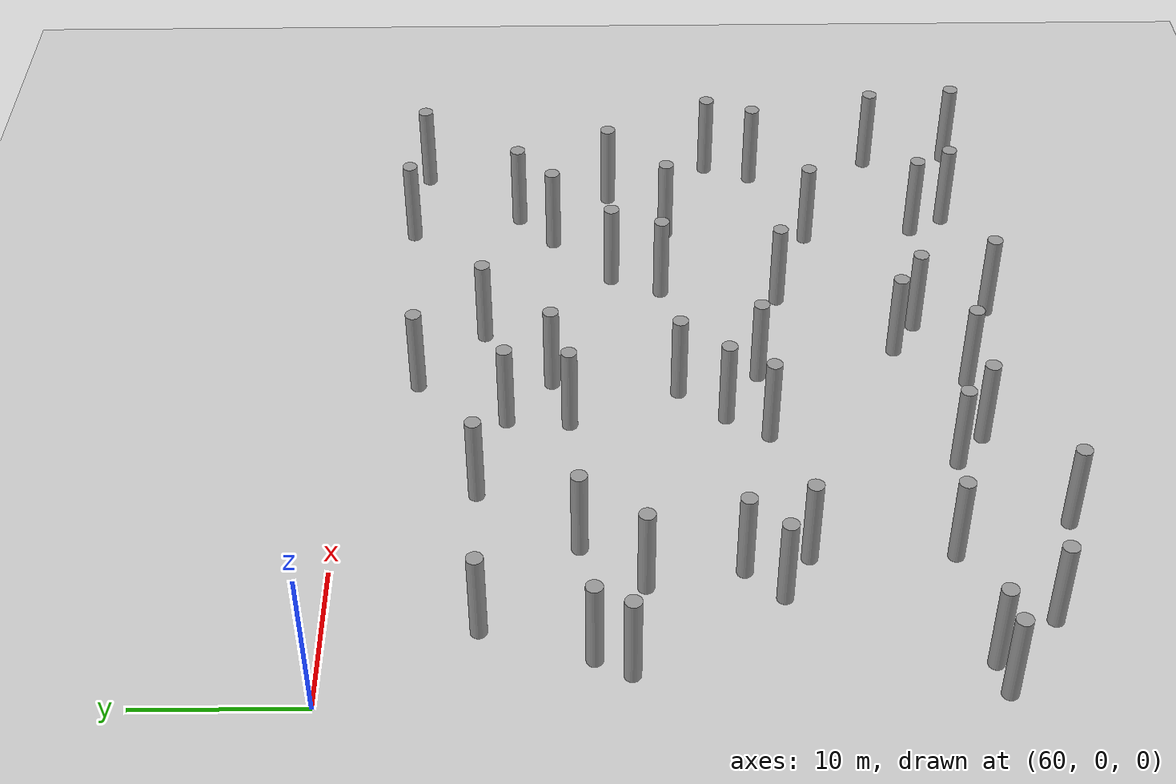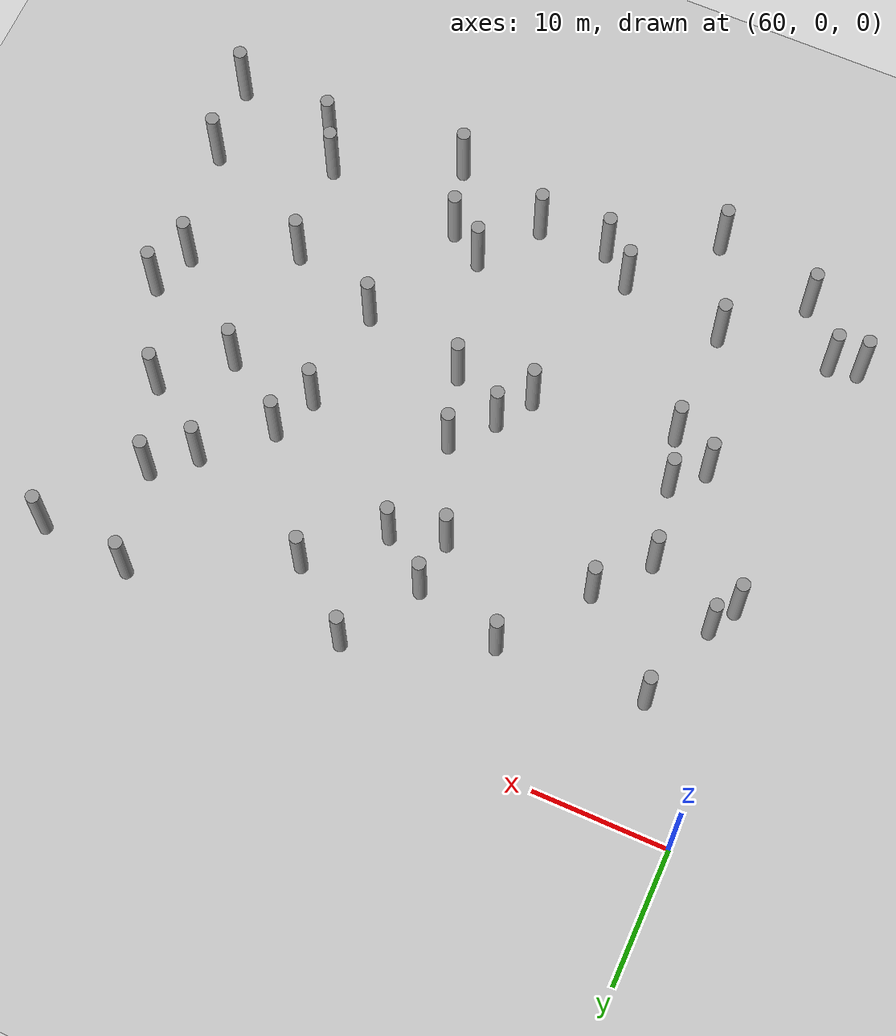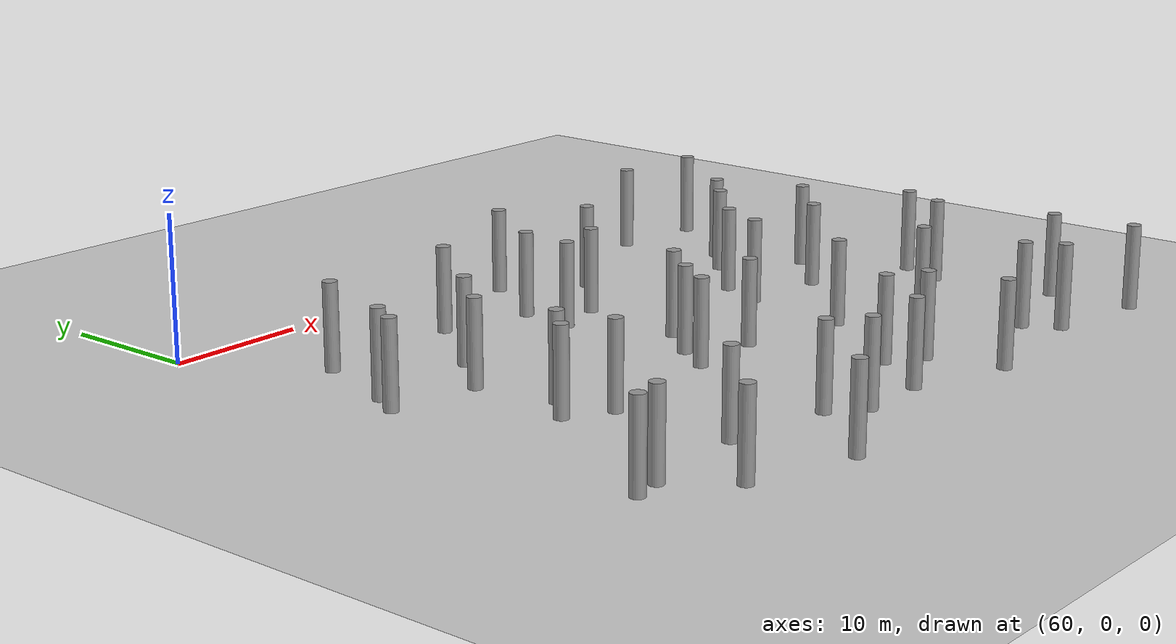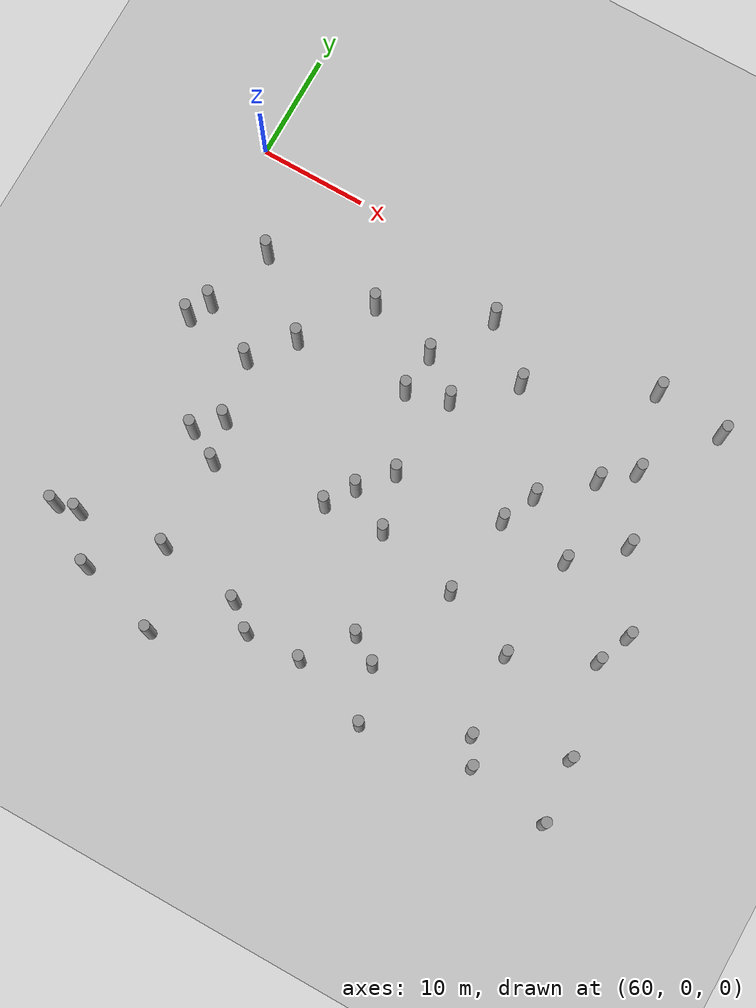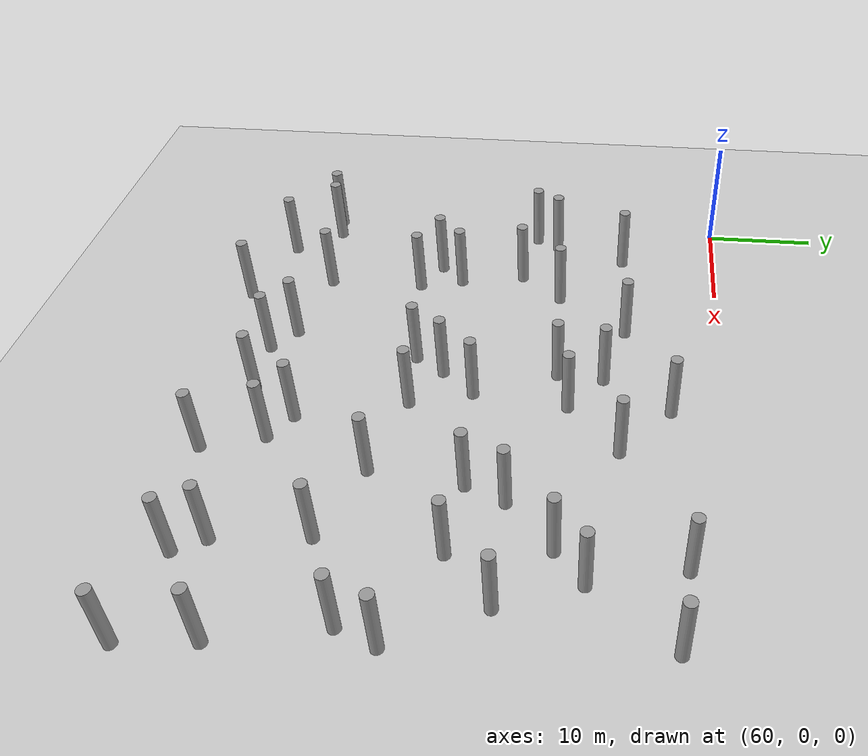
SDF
<sdf version="1.5">
 <world name="circle">
  <model name="ground">
   <static>1</static>
   <link name="link">
    <collision name="collision">
     <geometry><plane><normal>0 0 1</normal><size>100 100</size></plane></geometry>
     <surface><friction><ode><mu>100</mu><mu2>50</mu2></ode></friction></surface>
    </collision>
    <visual name="visual">
     <cast_shadows>0</cast_shadows>
     <geometry><plane><normal>0 0 1</normal><size>100 100</size></plane></geometry>
     <material>
      <script><uri>file://media/materials/scripts/gazebo.material</uri><name>Gazebo/Grey</name></script>
     </material>
    </visual>
    <velocity_decay><linear>0</linear><angular>0</angular></velocity_decay>
   </link>
  </model>
  <model name="unit_cylinder_85">
   <pose>60.5291782547 -37.8817674376 3 3e-06 4e-06 -0</pose>
   <static>1</static>
   <self_collide>1</self_collide>
   <link name="link">
    <inertial>
     <mass>1</mass>
     <inertia><ixx>0.145833</ixx><ixy>0</ixy><ixz>0</ixz><iyy>0.145833</iyy><iyz>0</iyz><izz>0.125</izz></inertia>
    </inertial>
    <collision name="collision">
     <geometry><cylinder><radius>0.5</radius><length>6</length></cylinder></geometry>
    </collision>
    <visual name="visual">
     <geometry><cylinder><radius>0.5</radius><length>6</length></cylinder></geometry>
     <material>
      <script><name>Gazebo/Grey</name><uri>file://media/materials/scripts/gazebo.material</uri></script>
     </material>
    </visual>
    <collision name="cyl_collision">
     <geometry><cylinder><radius>0.5</radius><length>6</length></cylinder></geometry>
    </collision>
    <sensor name="my_contact" type="contact">
     <contact><collision>cyl_collision</collision></contact>
     <update_rate>5</update_rate>
    </sensor>
   </link>
  </model>
  <model name="unit_cylinder_88">
   <pose>62.0941952787 -17.3783309904 3 3e-06 4e-06 -0</pose>
   <static>1</static>
   <self_collide>1</self_collide>
   <link name="link">
    <inertial>
     <mass>1</mass>
     <inertia><ixx>0.145833</ixx><ixy>0</ixy><ixz>0</ixz><iyy>0.145833</iyy><iyz>0</iyz><izz>0.125</izz></inertia>
    </inertial>
    <collision name="collision">
     <geometry><cylinder><radius>0.5</radius><length>6</length></cylinder></geometry>
    </collision>
    <visual name="visual">
     <geometry><cylinder><radius>0.5</radius><length>6</length></cylinder></geometry>
     <material>
      <script><name>Gazebo/Grey</name><uri>file://media/materials/scripts/gazebo.material</uri></script>
     </material>
    </visual>
    <collision name="cyl_collision">
     <geometry><cylinder><radius>0.5</radius><length>6</length></cylinder></geometry>
    </collision>
    <sensor name="my_contact" type="contact">
     <contact><collision>cyl_collision</collision></contact>
     <update_rate>5</update_rate>
    </sensor>
   </link>
  </model>
  <model name="unit_cylinder_96">
   <pose>65.7556817825 -41.3425212759 3 3e-06 4e-06 -0</pose>
   <static>1</static>
   <self_collide>1</self_collide>
   <link name="link">
    <inertial>
     <mass>1</mass>
     <inertia><ixx>0.145833</ixx><ixy>0</ixy><ixz>0</ixz><iyy>0.145833</iyy><iyz>0</iyz><izz>0.125</izz></inertia>
    </inertial>
    <collision name="collision">
     <geometry><cylinder><radius>0.5</radius><length>6</length></cylinder></geometry>
    </collision>
    <visual name="visual">
     <geometry><cylinder><radius>0.5</radius><length>6</length></cylinder></geometry>
     <material>
      <script><name>Gazebo/Grey</name><uri>file://media/materials/scripts/gazebo.material</uri></script>
     </material>
    </visual>
    <collision name="cyl_collision">
     <geometry><cylinder><radius>0.5</radius><length>6</length></cylinder></geometry>
    </collision>
    <sensor name="my_contact" type="contact">
     <contact><collision>cyl_collision</collision></contact>
     <update_rate>5</update_rate>
    </sensor>
   </link>
  </model>
  <model name="unit_cylinder_97">
   <pose>62.6766367463 -37.4803931034 3 3e-06 4e-06 -0</pose>
   <static>1</static>
   <self_collide>1</self_collide>
   <link name="link">
    <inertial>
     <mass>1</mass>
     <inertia><ixx>0.145833</ixx><ixy>0</ixy><ixz>0</ixz><iyy>0.145833</iyy><iyz>0</iyz><izz>0.125</izz></inertia>
    </inertial>
    <collision name="collision">
     <geometry><cylinder><radius>0.5</radius><length>6</length></cylinder></geometry>
    </collision>
    <visual name="visual">
     <geometry><cylinder><radius>0.5</radius><length>6</length></cylinder></geometry>
     <material>
      <script><name>Gazebo/Grey</name><uri>file://media/materials/scripts/gazebo.material</uri></script>
     </material>
    </visual>
    <collision name="cyl_collision">
     <geometry><cylinder><radius>0.5</radius><length>6</length></cylinder></geometry>
    </collision>
    <sensor name="my_contact" type="contact">
     <contact><collision>cyl_collision</collision></contact>
     <update_rate>5</update_rate>
    </sensor>
   </link>
  </model>
  <model name="unit_cylinder_98">
   <pose>67.6738407797 -26.2086623888 3 3e-06 4e-06 -0</pose>
   <static>1</static>
   <self_collide>1</self_collide>
   <link name="link">
    <inertial>
     <mass>1</mass>
     <inertia><ixx>0.145833</ixx><ixy>0</ixy><ixz>0</ixz><iyy>0.145833</iyy><iyz>0</iyz><izz>0.125</izz></inertia>
    </inertial>
    <collision name="collision">
     <geometry><cylinder><radius>0.5</radius><length>6</length></cylinder></geometry>
    </collision>
    <visual name="visual">
     <geometry><cylinder><radius>0.5</radius><length>6</length></cylinder></geometry>
     <material>
      <script><name>Gazebo/Grey</name><uri>file://media/materials/scripts/gazebo.material</uri></script>
     </material>
    </visual>
    <collision name="cyl_collision">
     <geometry><cylinder><radius>0.5</radius><length>6</length></cylinder></geometry>
    </collision>
    <sensor name="my_contact" type="contact">
     <contact><collision>cyl_collision</collision></contact>
     <update_rate>5</update_rate>
    </sensor>
   </link>
  </model>
  <model name="unit_cylinder_99">
   <pose>68.5849390489 -18.3017853732 3 3e-06 4e-06 -0</pose>
   <static>1</static>
   <self_collide>1</self_collide>
   <link name="link">
    <inertial>
     <mass>1</mass>
     <inertia><ixx>0.145833</ixx><ixy>0</ixy><ixz>0</ixz><iyy>0.145833</iyy><iyz>0</iyz><izz>0.125</izz></inertia>
    </inertial>
    <collision name="collision">
     <geometry><cylinder><radius>0.5</radius><length>6</length></cylinder></geometry>
    </collision>
    <visual name="visual">
     <geometry><cylinder><radius>0.5</radius><length>6</length></cylinder></geometry>
     <material>
      <script><name>Gazebo/Grey</name><uri>file://media/materials/scripts/gazebo.material</uri></script>
     </material>
    </visual>
    <collision name="cyl_collision">
     <geometry><cylinder><radius>0.5</radius><length>6</length></cylinder></geometry>
    </collision>
    <sensor name="my_contact" type="contact">
     <contact><collision>cyl_collision</collision></contact>
     <update_rate>5</update_rate>
    </sensor>
   </link>
  </model>
  <model name="unit_cylinder_100">
   <pose>63.1962397777 -15.3102940471 3 3e-06 4e-06 -0</pose>
   <static>1</static>
   <self_collide>1</self_collide>
   <link name="link">
    <inertial>
     <mass>1</mass>
     <inertia><ixx>0.145833</ixx><ixy>0</ixy><ixz>0</ixz><iyy>0.145833</iyy><iyz>0</iyz><izz>0.125</izz></inertia>
    </inertial>
    <collision name="collision">
     <geometry><cylinder><radius>0.5</radius><length>6</length></cylinder></geometry>
    </collision>
    <visual name="visual">
     <geometry><cylinder><radius>0.5</radius><length>6</length></cylinder></geometry>
     <material>
      <script><name>Gazebo/Grey</name><uri>file://media/materials/scripts/gazebo.material</uri></script>
     </material>
    </visual>
    <collision name="cyl_collision">
     <geometry><cylinder><radius>0.5</radius><length>6</length></cylinder></geometry>
    </collision>
    <sensor name="my_contact" type="contact">
     <contact><collision>cyl_collision</collision></contact>
     <update_rate>5</update_rate>
    </sensor>
   </link>
  </model>
  <model name="unit_cylinder_101">
   <pose>65.3477613188 -8.82656916744 3 3e-06 4e-06 -0</pose>
   <static>1</static>
   <self_collide>1</self_collide>
   <link name="link">
    <inertial>
     <mass>1</mass>
     <inertia><ixx>0.145833</ixx><ixy>0</ixy><ixz>0</ixz><iyy>0.145833</iyy><iyz>0</iyz><izz>0.125</izz></inertia>
    </inertial>
    <collision name="collision">
     <geometry><cylinder><radius>0.5</radius><length>6</length></cylinder></geometry>
    </collision>
    <visual name="visual">
     <geometry><cylinder><radius>0.5</radius><length>6</length></cylinder></geometry>
     <material>
      <script><name>Gazebo/Grey</name><uri>file://media/materials/scripts/gazebo.material</uri></script>
     </material>
    </visual>
    <collision name="cyl_collision">
     <geometry><cylinder><radius>0.5</radius><length>6</length></cylinder></geometry>
    </collision>
    <sensor name="my_contact" type="contact">
     <contact><collision>cyl_collision</collision></contact>
     <update_rate>5</update_rate>
    </sensor>
   </link>
  </model>
  <model name="unit_cylinder_108">
   <pose>73.4168012974 -43.5791878229 3 3e-06 4e-06 -0</pose>
   <static>1</static>
   <self_collide>1</self_collide>
   <link name="link">
    <inertial>
     <mass>1</mass>
     <inertia><ixx>0.145833</ixx><ixy>0</ixy><ixz>0</ixz><iyy>0.145833</iyy><iyz>0</iyz><izz>0.125</izz></inertia>
    </inertial>
    <collision name="collision">
     <geometry><cylinder><radius>0.5</radius><length>6</length></cylinder></geometry>
    </collision>
    <visual name="visual">
     <geometry><cylinder><radius>0.5</radius><length>6</length></cylinder></geometry>
     <material>
      <script><name>Gazebo/Grey</name><uri>file://media/materials/scripts/gazebo.material</uri></script>
     </material>
    </visual>
    <collision name="cyl_collision">
     <geometry><cylinder><radius>0.5</radius><length>6</length></cylinder></geometry>
    </collision>
    <sensor name="my_contact" type="contact">
     <contact><collision>cyl_collision</collision></contact>
     <update_rate>5</update_rate>
    </sensor>
   </link>
  </model>
  <model name="unit_cylinder_109">
   <pose>70.8381058164 -36.4555184195 3 3e-06 4e-06 -0</pose>
   <static>1</static>
   <self_collide>1</self_collide>
   <link name="link">
    <inertial>
     <mass>1</mass>
     <inertia><ixx>0.145833</ixx><ixy>0</ixy><ixz>0</ixz><iyy>0.145833</iyy><iyz>0</iyz><izz>0.125</izz></inertia>
    </inertial>
    <collision name="collision">
     <geometry><cylinder><radius>0.5</radius><length>6</length></cylinder></geometry>
    </collision>
    <visual name="visual">
     <geometry><cylinder><radius>0.5</radius><length>6</length></cylinder></geometry>
     <material>
      <script><name>Gazebo/Grey</name><uri>file://media/materials/scripts/gazebo.material</uri></script>
     </material>
    </visual>
    <collision name="cyl_collision">
     <geometry><cylinder><radius>0.5</radius><length>6</length></cylinder></geometry>
    </collision>
    <sensor name="my_contact" type="contact">
     <contact><collision>cyl_collision</collision></contact>
     <update_rate>5</update_rate>
    </sensor>
   </link>
  </model>
  <model name="unit_cylinder_110">
   <pose>70.7430462581 -27.8816749023 3 3e-06 4e-06 -0</pose>
   <static>1</static>
   <self_collide>1</self_collide>
   <link name="link">
    <inertial>
     <mass>1</mass>
     <inertia><ixx>0.145833</ixx><ixy>0</ixy><ixz>0</ixz><iyy>0.145833</iyy><iyz>0</iyz><izz>0.125</izz></inertia>
    </inertial>
    <collision name="collision">
     <geometry><cylinder><radius>0.5</radius><length>6</length></cylinder></geometry>
    </collision>
    <visual name="visual">
     <geometry><cylinder><radius>0.5</radius><length>6</length></cylinder></geometry>
     <material>
      <script><name>Gazebo/Grey</name><uri>file://media/materials/scripts/gazebo.material</uri></script>
     </material>
    </visual>
    <collision name="cyl_collision">
     <geometry><cylinder><radius>0.5</radius><length>6</length></cylinder></geometry>
    </collision>
    <sensor name="my_contact" type="contact">
     <contact><collision>cyl_collision</collision></contact>
     <update_rate>5</update_rate>
    </sensor>
   </link>
  </model>
  <model name="unit_cylinder_111">
   <pose>69.745508982 -24.0433433254 3 3e-06 4e-06 -0</pose>
   <static>1</static>
   <self_collide>1</self_collide>
   <link name="link">
    <inertial>
     <mass>1</mass>
     <inertia><ixx>0.145833</ixx><ixy>0</ixy><ixz>0</ixz><iyy>0.145833</iyy><iyz>0</iyz><izz>0.125</izz></inertia>
    </inertial>
    <collision name="collision">
     <geometry><cylinder><radius>0.5</radius><length>6</length></cylinder></geometry>
    </collision>
    <visual name="visual">
     <geometry><cylinder><radius>0.5</radius><length>6</length></cylinder></geometry>
     <material>
      <script><name>Gazebo/Grey</name><uri>file://media/materials/scripts/gazebo.material</uri></script>
     </material>
    </visual>
    <collision name="cyl_collision">
     <geometry><cylinder><radius>0.5</radius><length>6</length></cylinder></geometry>
    </collision>
    <sensor name="my_contact" type="contact">
     <contact><collision>cyl_collision</collision></contact>
     <update_rate>5</update_rate>
    </sensor>
   </link>
  </model>
  <model name="unit_cylinder_112">
   <pose>71.686923508 -14.5082607304 3 3e-06 4e-06 -0</pose>
   <static>1</static>
   <self_collide>1</self_collide>
   <link name="link">
    <inertial>
     <mass>1</mass>
     <inertia><ixx>0.145833</ixx><ixy>0</ixy><ixz>0</ixz><iyy>0.145833</iyy><iyz>0</iyz><izz>0.125</izz></inertia>
    </inertial>
    <collision name="collision">
     <geometry><cylinder><radius>0.5</radius><length>6</length></cylinder></geometry>
    </collision>
    <visual name="visual">
     <geometry><cylinder><radius>0.5</radius><length>6</length></cylinder></geometry>
     <material>
      <script><name>Gazebo/Grey</name><uri>file://media/materials/scripts/gazebo.material</uri></script>
     </material>
    </visual>
    <collision name="cyl_collision">
     <geometry><cylinder><radius>0.5</radius><length>6</length></cylinder></geometry>
    </collision>
    <sensor name="my_contact" type="contact">
     <contact><collision>cyl_collision</collision></contact>
     <update_rate>5</update_rate>
    </sensor>
   </link>
  </model>
  <model name="unit_cylinder_113">
   <pose>76.2471692518 -8.31125684733 3 3e-06 4e-06 -0</pose>
   <static>1</static>
   <self_collide>1</self_collide>
   <link name="link">
    <inertial>
     <mass>1</mass>
     <inertia><ixx>0.145833</ixx><ixy>0</ixy><ixz>0</ixz><iyy>0.145833</iyy><iyz>0</iyz><izz>0.125</izz></inertia>
    </inertial>
    <collision name="collision">
     <geometry><cylinder><radius>0.5</radius><length>6</length></cylinder></geometry>
    </collision>
    <visual name="visual">
     <geometry><cylinder><radius>0.5</radius><length>6</length></cylinder></geometry>
     <material>
      <script><name>Gazebo/Grey</name><uri>file://media/materials/scripts/gazebo.material</uri></script>
     </material>
    </visual>
    <collision name="cyl_collision">
     <geometry><cylinder><radius>0.5</radius><length>6</length></cylinder></geometry>
    </collision>
    <sensor name="my_contact" type="contact">
     <contact><collision>cyl_collision</collision></contact>
     <update_rate>5</update_rate>
    </sensor>
   </link>
  </model>
  <model name="unit_cylinder_120">
   <pose>80.9167398349 -39.5642793423 3 3e-06 4e-06 -0</pose>
   <static>1</static>
   <self_collide>1</self_collide>
   <link name="link">
    <inertial>
     <mass>1</mass>
     <inertia><ixx>0.145833</ixx><ixy>0</ixy><ixz>0</ixz><iyy>0.145833</iyy><iyz>0</iyz><izz>0.125</izz></inertia>
    </inertial>
    <collision name="collision">
     <geometry><cylinder><radius>0.5</radius><length>6</length></cylinder></geometry>
    </collision>
    <visual name="visual">
     <geometry><cylinder><radius>0.5</radius><length>6</length></cylinder></geometry>
     <material>
      <script><name>Gazebo/Grey</name><uri>file://media/materials/scripts/gazebo.material</uri></script>
     </material>
    </visual>
    <collision name="cyl_collision">
     <geometry><cylinder><radius>0.5</radius><length>6</length></cylinder></geometry>
    </collision>
    <sensor name="my_contact" type="contact">
     <contact><collision>cyl_collision</collision></contact>
     <update_rate>5</update_rate>
    </sensor>
   </link>
  </model>
  <model name="unit_cylinder_121">
   <pose>78.6010775555 -37.7265342169 3 3e-06 4e-06 -0</pose>
   <static>1</static>
   <self_collide>1</self_collide>
   <link name="link">
    <inertial>
     <mass>1</mass>
     <inertia><ixx>0.145833</ixx><ixy>0</ixy><ixz>0</ixz><iyy>0.145833</iyy><iyz>0</iyz><izz>0.125</izz></inertia>
    </inertial>
    <collision name="collision">
     <geometry><cylinder><radius>0.5</radius><length>6</length></cylinder></geometry>
    </collision>
    <visual name="visual">
     <geometry><cylinder><radius>0.5</radius><length>6</length></cylinder></geometry>
     <material>
      <script><name>Gazebo/Grey</name><uri>file://media/materials/scripts/gazebo.material</uri></script>
     </material>
    </visual>
    <collision name="cyl_collision">
     <geometry><cylinder><radius>0.5</radius><length>6</length></cylinder></geometry>
    </collision>
    <sensor name="my_contact" type="contact">
     <contact><collision>cyl_collision</collision></contact>
     <update_rate>5</update_rate>
    </sensor>
   </link>
  </model>
  <model name="unit_cylinder_122">
   <pose>81.2073308946 -26.3712459116 3 3e-06 4e-06 -0</pose>
   <static>1</static>
   <self_collide>1</self_collide>
   <link name="link">
    <inertial>
     <mass>1</mass>
     <inertia><ixx>0.145833</ixx><ixy>0</ixy><ixz>0</ixz><iyy>0.145833</iyy><iyz>0</iyz><izz>0.125</izz></inertia>
    </inertial>
    <collision name="collision">
     <geometry><cylinder><radius>0.5</radius><length>6</length></cylinder></geometry>
    </collision>
    <visual name="visual">
     <geometry><cylinder><radius>0.5</radius><length>6</length></cylinder></geometry>
     <material>
      <script><name>Gazebo/Grey</name><uri>file://media/materials/scripts/gazebo.material</uri></script>
     </material>
    </visual>
    <collision name="cyl_collision">
     <geometry><cylinder><radius>0.5</radius><length>6</length></cylinder></geometry>
    </collision>
    <sensor name="my_contact" type="contact">
     <contact><collision>cyl_collision</collision></contact>
     <update_rate>5</update_rate>
    </sensor>
   </link>
  </model>
  <model name="unit_cylinder_123">
   <pose>82.9029352111 -23.7596336995 3 3e-06 4e-06 -0</pose>
   <static>1</static>
   <self_collide>1</self_collide>
   <link name="link">
    <inertial>
     <mass>1</mass>
     <inertia><ixx>0.145833</ixx><ixy>0</ixy><ixz>0</ixz><iyy>0.145833</iyy><iyz>0</iyz><izz>0.125</izz></inertia>
    </inertial>
    <collision name="collision">
     <geometry><cylinder><radius>0.5</radius><length>6</length></cylinder></geometry>
    </collision>
    <visual name="visual">
     <geometry><cylinder><radius>0.5</radius><length>6</length></cylinder></geometry>
     <material>
      <script><name>Gazebo/Grey</name><uri>file://media/materials/scripts/gazebo.material</uri></script>
     </material>
    </visual>
    <collision name="cyl_collision">
     <geometry><cylinder><radius>0.5</radius><length>6</length></cylinder></geometry>
    </collision>
    <sensor name="my_contact" type="contact">
     <contact><collision>cyl_collision</collision></contact>
     <update_rate>5</update_rate>
    </sensor>
   </link>
  </model>
  <model name="unit_cylinder_124">
   <pose>82.4456925089 -13.9252918515 3 3e-06 4e-06 -0</pose>
   <static>1</static>
   <self_collide>1</self_collide>
   <link name="link">
    <inertial>
     <mass>1</mass>
     <inertia><ixx>0.145833</ixx><ixy>0</ixy><ixz>0</ixz><iyy>0.145833</iyy><iyz>0</iyz><izz>0.125</izz></inertia>
    </inertial>
    <collision name="collision">
     <geometry><cylinder><radius>0.5</radius><length>6</length></cylinder></geometry>
    </collision>
    <visual name="visual">
     <geometry><cylinder><radius>0.5</radius><length>6</length></cylinder></geometry>
     <material>
      <script><name>Gazebo/Grey</name><uri>file://media/materials/scripts/gazebo.material</uri></script>
     </material>
    </visual>
    <collision name="cyl_collision">
     <geometry><cylinder><radius>0.5</radius><length>6</length></cylinder></geometry>
    </collision>
    <sensor name="my_contact" type="contact">
     <contact><collision>cyl_collision</collision></contact>
     <update_rate>5</update_rate>
    </sensor>
   </link>
  </model>
  <model name="unit_cylinder_125">
   <pose>82.7244935058 -9.96640796907 3 3e-06 4e-06 -0</pose>
   <static>1</static>
   <self_collide>1</self_collide>
   <link name="link">
    <inertial>
     <mass>1</mass>
     <inertia><ixx>0.145833</ixx><ixy>0</ixy><ixz>0</ixz><iyy>0.145833</iyy><iyz>0</iyz><izz>0.125</izz></inertia>
    </inertial>
    <collision name="collision">
     <geometry><cylinder><radius>0.5</radius><length>6</length></cylinder></geometry>
    </collision>
    <visual name="visual">
     <geometry><cylinder><radius>0.5</radius><length>6</length></cylinder></geometry>
     <material>
      <script><name>Gazebo/Grey</name><uri>file://media/materials/scripts/gazebo.material</uri></script>
     </material>
    </visual>
    <collision name="cyl_collision">
     <geometry><cylinder><radius>0.5</radius><length>6</length></cylinder></geometry>
    </collision>
    <sensor name="my_contact" type="contact">
     <contact><collision>cyl_collision</collision></contact>
     <update_rate>5</update_rate>
    </sensor>
   </link>
  </model>
  <model name="unit_cylinder_132">
   <pose>86.1314028921 -39.3889899596 3 3e-06 4e-06 -0</pose>
   <static>1</static>
   <self_collide>1</self_collide>
   <link name="link">
    <inertial>
     <mass>1</mass>
     <inertia><ixx>0.145833</ixx><ixy>0</ixy><ixz>0</ixz><iyy>0.145833</iyy><iyz>0</iyz><izz>0.125</izz></inertia>
    </inertial>
    <collision name="collision">
     <geometry><cylinder><radius>0.5</radius><length>6</length></cylinder></geometry>
    </collision>
    <visual name="visual">
     <geometry><cylinder><radius>0.5</radius><length>6</length></cylinder></geometry>
     <material>
      <script><name>Gazebo/Grey</name><uri>file://media/materials/scripts/gazebo.material</uri></script>
     </material>
    </visual>
    <collision name="cyl_collision">
     <geometry><cylinder><radius>0.5</radius><length>6</length></cylinder></geometry>
    </collision>
    <sensor name="my_contact" type="contact">
     <contact><collision>cyl_collision</collision></contact>
     <update_rate>5</update_rate>
    </sensor>
   </link>
  </model>
  <model name="unit_cylinder_133">
   <pose>89.3130816025 -35.0898859341 3 3e-06 4e-06 -0</pose>
   <static>1</static>
   <self_collide>1</self_collide>
   <link name="link">
    <inertial>
     <mass>1</mass>
     <inertia><ixx>0.145833</ixx><ixy>0</ixy><ixz>0</ixz><iyy>0.145833</iyy><iyz>0</iyz><izz>0.125</izz></inertia>
    </inertial>
    <collision name="collision">
     <geometry><cylinder><radius>0.5</radius><length>6</length></cylinder></geometry>
    </collision>
    <visual name="visual">
     <geometry><cylinder><radius>0.5</radius><length>6</length></cylinder></geometry>
     <material>
      <script><name>Gazebo/Grey</name><uri>file://media/materials/scripts/gazebo.material</uri></script>
     </material>
    </visual>
    <collision name="cyl_collision">
     <geometry><cylinder><radius>0.5</radius><length>6</length></cylinder></geometry>
    </collision>
    <sensor name="my_contact" type="contact">
     <contact><collision>cyl_collision</collision></contact>
     <update_rate>5</update_rate>
    </sensor>
   </link>
  </model>
  <model name="unit_cylinder_134">
   <pose>86.9012308227 -26.0161250129 3 3e-06 4e-06 -0</pose>
   <static>1</static>
   <self_collide>1</self_collide>
   <link name="link">
    <inertial>
     <mass>1</mass>
     <inertia><ixx>0.145833</ixx><ixy>0</ixy><ixz>0</ixz><iyy>0.145833</iyy><iyz>0</iyz><izz>0.125</izz></inertia>
    </inertial>
    <collision name="collision">
     <geometry><cylinder><radius>0.5</radius><length>6</length></cylinder></geometry>
    </collision>
    <visual name="visual">
     <geometry><cylinder><radius>0.5</radius><length>6</length></cylinder></geometry>
     <material>
      <script><name>Gazebo/Grey</name><uri>file://media/materials/scripts/gazebo.material</uri></script>
     </material>
    </visual>
    <collision name="cyl_collision">
     <geometry><cylinder><radius>0.5</radius><length>6</length></cylinder></geometry>
    </collision>
    <sensor name="my_contact" type="contact">
     <contact><collision>cyl_collision</collision></contact>
     <update_rate>5</update_rate>
    </sensor>
   </link>
  </model>
  <model name="unit_cylinder_135">
   <pose>85.3665696167 -20.8506547377 3 3e-06 4e-06 -0</pose>
   <static>1</static>
   <self_collide>1</self_collide>
   <link name="link">
    <inertial>
     <mass>1</mass>
     <inertia><ixx>0.145833</ixx><ixy>0</ixy><ixz>0</ixz><iyy>0.145833</iyy><iyz>0</iyz><izz>0.125</izz></inertia>
    </inertial>
    <collision name="collision">
     <geometry><cylinder><radius>0.5</radius><length>6</length></cylinder></geometry>
    </collision>
    <visual name="visual">
     <geometry><cylinder><radius>0.5</radius><length>6</length></cylinder></geometry>
     <material>
      <script><name>Gazebo/Grey</name><uri>file://media/materials/scripts/gazebo.material</uri></script>
     </material>
    </visual>
    <collision name="cyl_collision">
     <geometry><cylinder><radius>0.5</radius><length>6</length></cylinder></geometry>
    </collision>
    <sensor name="my_contact" type="contact">
     <contact><collision>cyl_collision</collision></contact>
     <update_rate>5</update_rate>
    </sensor>
   </link>
  </model>
  <model name="unit_cylinder_136">
   <pose>86.3469668932 -12.7890576382 3 3e-06 4e-06 -0</pose>
   <static>1</static>
   <self_collide>1</self_collide>
   <link name="link">
    <inertial>
     <mass>1</mass>
     <inertia><ixx>0.145833</ixx><ixy>0</ixy><ixz>0</ixz><iyy>0.145833</iyy><iyz>0</iyz><izz>0.125</izz></inertia>
    </inertial>
    <collision name="collision">
     <geometry><cylinder><radius>0.5</radius><length>6</length></cylinder></geometry>
    </collision>
    <visual name="visual">
     <geometry><cylinder><radius>0.5</radius><length>6</length></cylinder></geometry>
     <material>
      <script><name>Gazebo/Grey</name><uri>file://media/materials/scripts/gazebo.material</uri></script>
     </material>
    </visual>
    <collision name="cyl_collision">
     <geometry><cylinder><radius>0.5</radius><length>6</length></cylinder></geometry>
    </collision>
    <sensor name="my_contact" type="contact">
     <contact><collision>cyl_collision</collision></contact>
     <update_rate>5</update_rate>
    </sensor>
   </link>
  </model>
  <model name="unit_cylinder_137">
   <pose>86.2146579077 -4.23637874355 3 3e-06 4e-06 -0</pose>
   <static>1</static>
   <self_collide>1</self_collide>
   <link name="link">
    <inertial>
     <mass>1</mass>
     <inertia><ixx>0.145833</ixx><ixy>0</ixy><ixz>0</ixz><iyy>0.145833</iyy><iyz>0</iyz><izz>0.125</izz></inertia>
    </inertial>
    <collision name="collision">
     <geometry><cylinder><radius>0.5</radius><length>6</length></cylinder></geometry>
    </collision>
    <visual name="visual">
     <geometry><cylinder><radius>0.5</radius><length>6</length></cylinder></geometry>
     <material>
      <script><name>Gazebo/Grey</name><uri>file://media/materials/scripts/gazebo.material</uri></script>
     </material>
    </visual>
    <collision name="cyl_collision">
     <geometry><cylinder><radius>0.5</radius><length>6</length></cylinder></geometry>
    </collision>
    <sensor name="my_contact" type="contact">
     <contact><collision>cyl_collision</collision></contact>
     <update_rate>5</update_rate>
    </sensor>
   </link>
  </model>
  <model name="unit_cylinder_144">
   <pose>93.3346573315 -41.6964556594 3 3e-06 4e-06 -0</pose>
   <static>1</static>
   <self_collide>1</self_collide>
   <link name="link">
    <inertial>
     <mass>1</mass>
     <inertia><ixx>0.145833</ixx><ixy>0</ixy><ixz>0</ixz><iyy>0.145833</iyy><iyz>0</iyz><izz>0.125</izz></inertia>
    </inertial>
    <collision name="collision">
     <geometry><cylinder><radius>0.5</radius><length>6</length></cylinder></geometry>
    </collision>
    <visual name="visual">
     <geometry><cylinder><radius>0.5</radius><length>6</length></cylinder></geometry>
     <material>
      <script><name>Gazebo/Grey</name><uri>file://media/materials/scripts/gazebo.material</uri></script>
     </material>
    </visual>
    <collision name="cyl_collision">
     <geometry><cylinder><radius>0.5</radius><length>6</length></cylinder></geometry>
    </collision>
    <sensor name="my_contact" type="contact">
     <contact><collision>cyl_collision</collision></contact>
     <update_rate>5</update_rate>
    </sensor>
   </link>
  </model>
  <model name="unit_cylinder_145">
   <pose>91.8318160449 -36.6734125365 3 3e-06 4e-06 -0</pose>
   <static>1</static>
   <self_collide>1</self_collide>
   <link name="link">
    <inertial>
     <mass>1</mass>
     <inertia><ixx>0.145833</ixx><ixy>0</ixy><ixz>0</ixz><iyy>0.145833</iyy><iyz>0</iyz><izz>0.125</izz></inertia>
    </inertial>
    <collision name="collision">
     <geometry><cylinder><radius>0.5</radius><length>6</length></cylinder></geometry>
    </collision>
    <visual name="visual">
     <geometry><cylinder><radius>0.5</radius><length>6</length></cylinder></geometry>
     <material>
      <script><name>Gazebo/Grey</name><uri>file://media/materials/scripts/gazebo.material</uri></script>
     </material>
    </visual>
    <collision name="cyl_collision">
     <geometry><cylinder><radius>0.5</radius><length>6</length></cylinder></geometry>
    </collision>
    <sensor name="my_contact" type="contact">
     <contact><collision>cyl_collision</collision></contact>
     <update_rate>5</update_rate>
    </sensor>
   </link>
  </model>
  <model name="unit_cylinder_146">
   <pose>94.6932890411 -27.8246050557 3 3e-06 4e-06 -0</pose>
   <static>1</static>
   <self_collide>1</self_collide>
   <link name="link">
    <inertial>
     <mass>1</mass>
     <inertia><ixx>0.145833</ixx><ixy>0</ixy><ixz>0</ixz><iyy>0.145833</iyy><iyz>0</iyz><izz>0.125</izz></inertia>
    </inertial>
    <collision name="collision">
     <geometry><cylinder><radius>0.5</radius><length>6</length></cylinder></geometry>
    </collision>
    <visual name="visual">
     <geometry><cylinder><radius>0.5</radius><length>6</length></cylinder></geometry>
     <material>
      <script><name>Gazebo/Grey</name><uri>file://media/materials/scripts/gazebo.material</uri></script>
     </material>
    </visual>
    <collision name="cyl_collision">
     <geometry><cylinder><radius>0.5</radius><length>6</length></cylinder></geometry>
    </collision>
    <sensor name="my_contact" type="contact">
     <contact><collision>cyl_collision</collision></contact>
     <update_rate>5</update_rate>
    </sensor>
   </link>
  </model>
  <model name="unit_cylinder_147">
   <pose>95.6367740337 -20.0517784885 3 3e-06 4e-06 -0</pose>
   <static>1</static>
   <self_collide>1</self_collide>
   <link name="link">
    <inertial>
     <mass>1</mass>
     <inertia><ixx>0.145833</ixx><ixy>0</ixy><ixz>0</ixz><iyy>0.145833</iyy><iyz>0</iyz><izz>0.125</izz></inertia>
    </inertial>
    <collision name="collision">
     <geometry><cylinder><radius>0.5</radius><length>6</length></cylinder></geometry>
    </collision>
    <visual name="visual">
     <geometry><cylinder><radius>0.5</radius><length>6</length></cylinder></geometry>
     <material>
      <script><name>Gazebo/Grey</name><uri>file://media/materials/scripts/gazebo.material</uri></script>
     </material>
    </visual>
    <collision name="cyl_collision">
     <geometry><cylinder><radius>0.5</radius><length>6</length></cylinder></geometry>
    </collision>
    <sensor name="my_contact" type="contact">
     <contact><collision>cyl_collision</collision></contact>
     <update_rate>5</update_rate>
    </sensor>
   </link>
  </model>
  <model name="unit_cylinder_148">
   <pose>97.0466737268 -16.7490719785 3 3e-06 4e-06 -0</pose>
   <static>1</static>
   <self_collide>1</self_collide>
   <link name="link">
    <inertial>
     <mass>1</mass>
     <inertia><ixx>0.145833</ixx><ixy>0</ixy><ixz>0</ixz><iyy>0.145833</iyy><iyz>0</iyz><izz>0.125</izz></inertia>
    </inertial>
    <collision name="collision">
     <geometry><cylinder><radius>0.5</radius><length>6</length></cylinder></geometry>
    </collision>
    <visual name="visual">
     <geometry><cylinder><radius>0.5</radius><length>6</length></cylinder></geometry>
     <material>
      <script><name>Gazebo/Grey</name><uri>file://media/materials/scripts/gazebo.material</uri></script>
     </material>
    </visual>
    <collision name="cyl_collision">
     <geometry><cylinder><radius>0.5</radius><length>6</length></cylinder></geometry>
    </collision>
    <sensor name="my_contact" type="contact">
     <contact><collision>cyl_collision</collision></contact>
     <update_rate>5</update_rate>
    </sensor>
   </link>
  </model>
  <model name="unit_cylinder_149">
   <pose>91.1300359637 -8.34851412595 3 3e-06 4e-06 -0</pose>
   <static>1</static>
   <self_collide>1</self_collide>
   <link name="link">
    <inertial>
     <mass>1</mass>
     <inertia><ixx>0.145833</ixx><ixy>0</ixy><ixz>0</ixz><iyy>0.145833</iyy><iyz>0</iyz><izz>0.125</izz></inertia>
    </inertial>
    <collision name="collision">
     <geometry><cylinder><radius>0.5</radius><length>6</length></cylinder></geometry>
    </collision>
    <visual name="visual">
     <geometry><cylinder><radius>0.5</radius><length>6</length></cylinder></geometry>
     <material>
      <script><name>Gazebo/Grey</name><uri>file://media/materials/scripts/gazebo.material</uri></script>
     </material>
    </visual>
    <collision name="cyl_collision">
     <geometry><cylinder><radius>0.5</radius><length>6</length></cylinder></geometry>
    </collision>
    <sensor name="my_contact" type="contact">
     <contact><collision>cyl_collision</collision></contact>
     <update_rate>5</update_rate>
    </sensor>
   </link>
  </model>
  <model name="unit_cylinder_156">
   <pose>103.594891022 -40.1943353128 3 3e-06 4e-06 -0</pose>
   <static>1</static>
   <self_collide>1</self_collide>
   <link name="link">
    <inertial>
     <mass>1</mass>
     <inertia><ixx>0.145833</ixx><ixy>0</ixy><ixz>0</ixz><iyy>0.145833</iyy><iyz>0</iyz><izz>0.125</izz></inertia>
    </inertial>
    <collision name="collision">
     <geometry><cylinder><radius>0.5</radius><length>6</length></cylinder></geometry>
    </collision>
    <visual name="visual">
     <geometry><cylinder><radius>0.5</radius><length>6</length></cylinder></geometry>
     <material>
      <script><name>Gazebo/Grey</name><uri>file://media/materials/scripts/gazebo.material</uri></script>
     </material>
    </visual>
    <collision name="cyl_collision">
     <geometry><cylinder><radius>0.5</radius><length>6</length></cylinder></geometry>
    </collision>
    <sensor name="my_contact" type="contact">
     <contact><collision>cyl_collision</collision></contact>
     <update_rate>5</update_rate>
    </sensor>
   </link>
  </model>
  <model name="unit_cylinder_157">
   <pose>102.291130122 -37.8430220042 3 3e-06 4e-06 -0</pose>
   <static>1</static>
   <self_collide>1</self_collide>
   <link name="link">
    <inertial>
     <mass>1</mass>
     <inertia><ixx>0.145833</ixx><ixy>0</ixy><ixz>0</ixz><iyy>0.145833</iyy><iyz>0</iyz><izz>0.125</izz></inertia>
    </inertial>
    <collision name="collision">
     <geometry><cylinder><radius>0.5</radius><length>6</length></cylinder></geometry>
    </collision>
    <visual name="visual">
     <geometry><cylinder><radius>0.5</radius><length>6</length></cylinder></geometry>
     <material>
      <script><name>Gazebo/Grey</name><uri>file://media/materials/scripts/gazebo.material</uri></script>
     </material>
    </visual>
    <collision name="cyl_collision">
     <geometry><cylinder><radius>0.5</radius><length>6</length></cylinder></geometry>
    </collision>
    <sensor name="my_contact" type="contact">
     <contact><collision>cyl_collision</collision></contact>
     <update_rate>5</update_rate>
    </sensor>
   </link>
  </model>
  <model name="unit_cylinder_158">
   <pose>101.514851331 -30.3111842054 3 3e-06 4e-06 -0</pose>
   <static>1</static>
   <self_collide>1</self_collide>
   <link name="link">
    <inertial>
     <mass>1</mass>
     <inertia><ixx>0.145833</ixx><ixy>0</ixy><ixz>0</ixz><iyy>0.145833</iyy><iyz>0</iyz><izz>0.125</izz></inertia>
    </inertial>
    <collision name="collision">
     <geometry><cylinder><radius>0.5</radius><length>6</length></cylinder></geometry>
    </collision>
    <visual name="visual">
     <geometry><cylinder><radius>0.5</radius><length>6</length></cylinder></geometry>
     <material>
      <script><name>Gazebo/Grey</name><uri>file://media/materials/scripts/gazebo.material</uri></script>
     </material>
    </visual>
    <collision name="cyl_collision">
     <geometry><cylinder><radius>0.5</radius><length>6</length></cylinder></geometry>
    </collision>
    <sensor name="my_contact" type="contact">
     <contact><collision>cyl_collision</collision></contact>
     <update_rate>5</update_rate>
    </sensor>
   </link>
  </model>
  <model name="unit_cylinder_159">
   <pose>102.1589777 -20.5694289886 3 3e-06 4e-06 -0</pose>
   <static>1</static>
   <self_collide>1</self_collide>
   <link name="link">
    <inertial>
     <mass>1</mass>
     <inertia><ixx>0.145833</ixx><ixy>0</ixy><ixz>0</ixz><iyy>0.145833</iyy><iyz>0</iyz><izz>0.125</izz></inertia>
    </inertial>
    <collision name="collision">
     <geometry><cylinder><radius>0.5</radius><length>6</length></cylinder></geometry>
    </collision>
    <visual name="visual">
     <geometry><cylinder><radius>0.5</radius><length>6</length></cylinder></geometry>
     <material>
      <script><name>Gazebo/Grey</name><uri>file://media/materials/scripts/gazebo.material</uri></script>
     </material>
    </visual>
    <collision name="cyl_collision">
     <geometry><cylinder><radius>0.5</radius><length>6</length></cylinder></geometry>
    </collision>
    <sensor name="my_contact" type="contact">
     <contact><collision>cyl_collision</collision></contact>
     <update_rate>5</update_rate>
    </sensor>
   </link>
  </model>
  <model name="unit_cylinder_160">
   <pose>101.232054917 -12.784388497 3 3e-06 4e-06 -0</pose>
   <static>1</static>
   <self_collide>1</self_collide>
   <link name="link">
    <inertial>
     <mass>1</mass>
     <inertia><ixx>0.145833</ixx><ixy>0</ixy><ixz>0</ixz><iyy>0.145833</iyy><iyz>0</iyz><izz>0.125</izz></inertia>
    </inertial>
    <collision name="collision">
     <geometry><cylinder><radius>0.5</radius><length>6</length></cylinder></geometry>
    </collision>
    <visual name="visual">
     <geometry><cylinder><radius>0.5</radius><length>6</length></cylinder></geometry>
     <material>
      <script><name>Gazebo/Grey</name><uri>file://media/materials/scripts/gazebo.material</uri></script>
     </material>
    </visual>
    <collision name="cyl_collision">
     <geometry><cylinder><radius>0.5</radius><length>6</length></cylinder></geometry>
    </collision>
    <sensor name="my_contact" type="contact">
     <contact><collision>cyl_collision</collision></contact>
     <update_rate>5</update_rate>
    </sensor>
   </link>
  </model>
  <model name="unit_cylinder_161">
   <pose>103.991824921 -10.3828545942 3 3e-06 4e-06 -0</pose>
   <static>1</static>
   <self_collide>1</self_collide>
   <link name="link">
    <inertial>
     <mass>1</mass>
     <inertia><ixx>0.145833</ixx><ixy>0</ixy><ixz>0</ixz><iyy>0.145833</iyy><iyz>0</iyz><izz>0.125</izz></inertia>
    </inertial>
    <collision name="collision">
     <geometry><cylinder><radius>0.5</radius><length>6</length></cylinder></geometry>
    </collision>
    <visual name="visual">
     <geometry><cylinder><radius>0.5</radius><length>6</length></cylinder></geometry>
     <material>
      <script><name>Gazebo/Grey</name><uri>file://media/materials/scripts/gazebo.material</uri></script>
     </material>
    </visual>
    <collision name="cyl_collision">
     <geometry><cylinder><radius>0.5</radius><length>6</length></cylinder></geometry>
    </collision>
    <sensor name="my_contact" type="contact">
     <contact><collision>cyl_collision</collision></contact>
     <update_rate>5</update_rate>
    </sensor>
   </link>
  </model>
  <model name="unit_cylinder_162">
   <pose>102.178493526 -3.05961169259 3 3e-06 4e-06 -0</pose>
   <static>1</static>
   <self_collide>1</self_collide>
   <link name="link">
    <inertial>
     <mass>1</mass>
     <inertia><ixx>0.145833</ixx><ixy>0</ixy><ixz>0</ixz><iyy>0.145833</iyy><iyz>0</iyz><izz>0.125</izz></inertia>
    </inertial>
    <collision name="collision">
     <geometry><cylinder><radius>0.5</radius><length>6</length></cylinder></geometry>
    </collision>
    <visual name="visual">
     <geometry><cylinder><radius>0.5</radius><length>6</length></cylinder></geometry>
     <material>
      <script><name>Gazebo/Grey</name><uri>file://media/materials/scripts/gazebo.material</uri></script>
     </material>
    </visual>
    <collision name="cyl_collision">
     <geometry><cylinder><radius>0.5</radius><length>6</length></cylinder></geometry>
    </collision>
    <sensor name="my_contact" type="contact">
     <contact><collision>cyl_collision</collision></contact>
     <update_rate>5</update_rate>
    </sensor>
   </link>
  </model>
  <model name="unit_cylinder_168">
   <pose>111.245839707 -41.3626094032 3 3e-06 4e-06 -0</pose>
   <static>1</static>
   <self_collide>1</self_collide>
   <link name="link">
    <inertial>
     <mass>1</mass>
     <inertia><ixx>0.145833</ixx><ixy>0</ixy><ixz>0</ixz><iyy>0.145833</iyy><iyz>0</iyz><izz>0.125</izz></inertia>
    </inertial>
    <collision name="collision">
     <geometry><cylinder><radius>0.5</radius><length>6</length></cylinder></geometry>
    </collision>
    <visual name="visual">
     <geometry><cylinder><radius>0.5</radius><length>6</length></cylinder></geometry>
     <material>
      <script><name>Gazebo/Grey</name><uri>file://media/materials/scripts/gazebo.material</uri></script>
     </material>
    </visual>
    <collision name="cyl_collision">
     <geometry><cylinder><radius>0.5</radius><length>6</length></cylinder></geometry>
    </collision>
    <sensor name="my_contact" type="contact">
     <contact><collision>cyl_collision</collision></contact>
     <update_rate>5</update_rate>
    </sensor>
   </link>
  </model>
  <model name="unit_cylinder_169">
   <pose>110.651401781 -35.4609407111 3 3e-06 4e-06 -0</pose>
   <static>1</static>
   <self_collide>1</self_collide>
   <link name="link">
    <inertial>
     <mass>1</mass>
     <inertia><ixx>0.145833</ixx><ixy>0</ixy><ixz>0</ixz><iyy>0.145833</iyy><iyz>0</iyz><izz>0.125</izz></inertia>
    </inertial>
    <collision name="collision">
     <geometry><cylinder><radius>0.5</radius><length>6</length></cylinder></geometry>
    </collision>
    <visual name="visual">
     <geometry><cylinder><radius>0.5</radius><length>6</length></cylinder></geometry>
     <material>
      <script><name>Gazebo/Grey</name><uri>file://media/materials/scripts/gazebo.material</uri></script>
     </material>
    </visual>
    <collision name="cyl_collision">
     <geometry><cylinder><radius>0.5</radius><length>6</length></cylinder></geometry>
    </collision>
    <sensor name="my_contact" type="contact">
     <contact><collision>cyl_collision</collision></contact>
     <update_rate>5</update_rate>
    </sensor>
   </link>
  </model>
  <model name="unit_cylinder_170">
   <pose>108.817082457 -26.906402347 3 3e-06 4e-06 -0</pose>
   <static>1</static>
   <self_collide>1</self_collide>
   <link name="link">
    <inertial>
     <mass>1</mass>
     <inertia><ixx>0.145833</ixx><ixy>0</ixy><ixz>0</ixz><iyy>0.145833</iyy><iyz>0</iyz><izz>0.125</izz></inertia>
    </inertial>
    <collision name="collision">
     <geometry><cylinder><radius>0.5</radius><length>6</length></cylinder></geometry>
    </collision>
    <visual name="visual">
     <geometry><cylinder><radius>0.5</radius><length>6</length></cylinder></geometry>
     <material>
      <script><name>Gazebo/Grey</name><uri>file://media/materials/scripts/gazebo.material</uri></script>
     </material>
    </visual>
    <collision name="cyl_collision">
     <geometry><cylinder><radius>0.5</radius><length>6</length></cylinder></geometry>
    </collision>
    <sensor name="my_contact" type="contact">
     <contact><collision>cyl_collision</collision></contact>
     <update_rate>5</update_rate>
    </sensor>
   </link>
  </model>
  <model name="unit_cylinder_171">
   <pose>110.065641918 -23.7366223409 3 3e-06 4e-06 -0</pose>
   <static>1</static>
   <self_collide>1</self_collide>
   <link name="link">
    <inertial>
     <mass>1</mass>
     <inertia><ixx>0.145833</ixx><ixy>0</ixy><ixz>0</ixz><iyy>0.145833</iyy><iyz>0</iyz><izz>0.125</izz></inertia>
    </inertial>
    <collision name="collision">
     <geometry><cylinder><radius>0.5</radius><length>6</length></cylinder></geometry>
    </collision>
    <visual name="visual">
     <geometry><cylinder><radius>0.5</radius><length>6</length></cylinder></geometry>
     <material>
      <script><name>Gazebo/Grey</name><uri>file://media/materials/scripts/gazebo.material</uri></script>
     </material>
    </visual>
    <collision name="cyl_collision">
     <geometry><cylinder><radius>0.5</radius><length>6</length></cylinder></geometry>
    </collision>
    <sensor name="my_contact" type="contact">
     <contact><collision>cyl_collision</collision></contact>
     <update_rate>5</update_rate>
    </sensor>
   </link>
  </model>
  <model name="unit_cylinder_172">
   <pose>106.415551869 -16.6343065535 3 3e-06 4e-06 -0</pose>
   <static>1</static>
   <self_collide>1</self_collide>
   <link name="link">
    <inertial>
     <mass>1</mass>
     <inertia><ixx>0.145833</ixx><ixy>0</ixy><ixz>0</ixz><iyy>0.145833</iyy><iyz>0</iyz><izz>0.125</izz></inertia>
    </inertial>
    <collision name="collision">
     <geometry><cylinder><radius>0.5</radius><length>6</length></cylinder></geometry>
    </collision>
    <visual name="visual">
     <geometry><cylinder><radius>0.5</radius><length>6</length></cylinder></geometry>
     <material>
      <script><name>Gazebo/Grey</name><uri>file://media/materials/scripts/gazebo.material</uri></script>
     </material>
    </visual>
    <collision name="cyl_collision">
     <geometry><cylinder><radius>0.5</radius><length>6</length></cylinder></geometry>
    </collision>
    <sensor name="my_contact" type="contact">
     <contact><collision>cyl_collision</collision></contact>
     <update_rate>5</update_rate>
    </sensor>
   </link>
  </model>
  <model name="unit_cylinder_173">
   <pose>108.878941151 -3.76787963663 3 3e-06 4e-06 -0</pose>
   <static>1</static>
   <self_collide>1</self_collide>
   <link name="link">
    <inertial>
     <mass>1</mass>
     <inertia><ixx>0.145833</ixx><ixy>0</ixy><ixz>0</ixz><iyy>0.145833</iyy><iyz>0</iyz><izz>0.125</izz></inertia>
    </inertial>
    <collision name="collision">
     <geometry><cylinder><radius>0.5</radius><length>6</length></cylinder></geometry>
    </collision>
    <visual name="visual">
     <geometry><cylinder><radius>0.5</radius><length>6</length></cylinder></geometry>
     <material>
      <script><name>Gazebo/Grey</name><uri>file://media/materials/scripts/gazebo.material</uri></script>
     </material>
    </visual>
    <collision name="cyl_collision">
     <geometry><cylinder><radius>0.5</radius><length>6</length></cylinder></geometry>
    </collision>
    <sensor name="my_contact" type="contact">
     <contact><collision>cyl_collision</collision></contact>
     <update_rate>5</update_rate>
    </sensor>
   </link>
  </model>
 </world>
</sdf>
